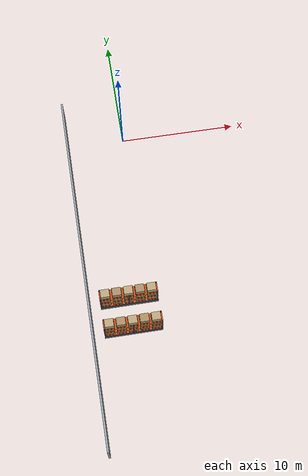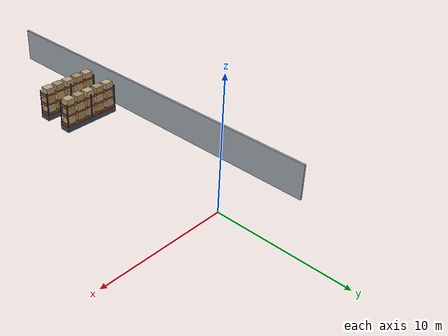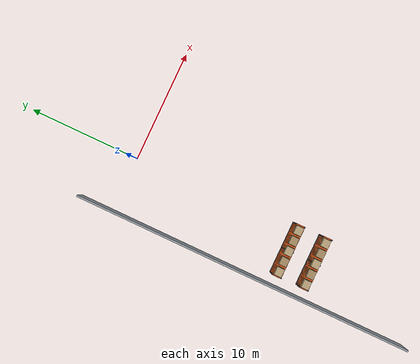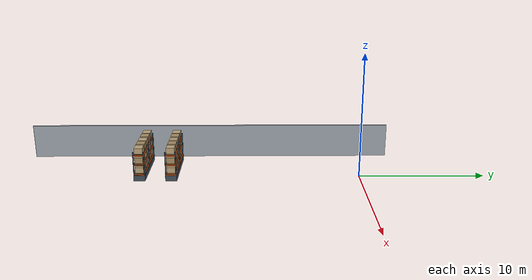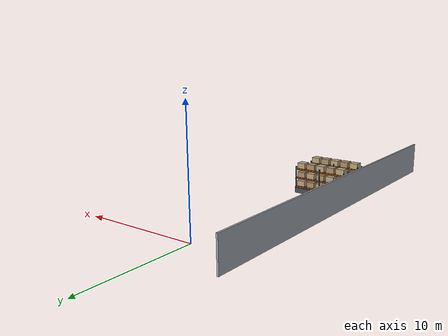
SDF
<sdf version="1.6">
 <world name="warehouse_logistics">
  <model name="warehouse_wall_west">
   <static>true</static>
   <pose>-4.925000000 -12.250000000 0.000000000 0.000000000 0.000000000 0.000000000</pose>
   <link name="structure">
    <collision name="mapped_solid_collision">
     <pose>0.000000000 0.000000000 1.400000000 0.000000000 0.000000000 0.000000000</pose>
     <geometry><box><size>0.150000000 30.500000000 2.800000000</size></box></geometry>
    </collision>
    <visual name="mapped_solid_visual">
     <pose>0.000000000 0.000000000 1.400000000 0.000000000 0.000000000 0.000000000</pose>
     <geometry><box><size>0.150000000 30.500000000 2.800000000</size></box></geometry>
     <material><ambient>.64 .67 .70 1</ambient><diffuse>.64 .67 .70 1</diffuse></material>
    </visual>
   </link>
  </model>
  <model name="warehouse_rack_06">
   <static>true</static>
   <pose>-1.600000000 -15.000000000 0.000000000 0.000000000 0.000000000 0.000000000</pose>
   <link name="structure">
    <collision name="mapped_solid_collision">
     <pose>0.000000000 0.000000000 0.225000000 0.000000000 0.000000000 0.000000000</pose>
     <geometry><box><size>4.800000000 0.900000000 0.450000000</size></box></geometry>
    </collision>
    <visual name="mapped_solid_visual">
     <pose>0.000000000 0.000000000 0.225000000 0.000000000 0.000000000 0.000000000</pose>
     <geometry><box><size>4.800000000 0.900000000 0.450000000</size></box></geometry>
     <material><ambient>.27 .31 .35 1</ambient><diffuse>.27 .31 .35 1</diffuse></material>
    </visual>
    <visual name="upright_0_0_visual">
     <pose>-2.340000000 -0.405000000 1.200000000 0.000000000 0.000000000 0.000000000</pose>
     <geometry><box><size>0.075000000 0.075000000 2.400000000</size></box></geometry>
     <material><ambient>.16 .28 .40 1</ambient><diffuse>.16 .28 .40 1</diffuse></material>
    </visual>
    <visual name="upright_0_1_visual">
     <pose>-2.340000000 0.405000000 1.200000000 0.000000000 0.000000000 0.000000000</pose>
     <geometry><box><size>0.075000000 0.075000000 2.400000000</size></box></geometry>
     <material><ambient>.16 .28 .40 1</ambient><diffuse>.16 .28 .40 1</diffuse></material>
    </visual>
    <visual name="upright_1_0_visual">
     <pose>0.000000000 -0.405000000 1.200000000 0.000000000 0.000000000 0.000000000</pose>
     <geometry><box><size>0.075000000 0.075000000 2.400000000</size></box></geometry>
     <material><ambient>.16 .28 .40 1</ambient><diffuse>.16 .28 .40 1</diffuse></material>
    </visual>
    <visual name="upright_1_1_visual">
     <pose>0.000000000 0.405000000 1.200000000 0.000000000 0.000000000 0.000000000</pose>
     <geometry><box><size>0.075000000 0.075000000 2.400000000</size></box></geometry>
     <material><ambient>.16 .28 .40 1</ambient><diffuse>.16 .28 .40 1</diffuse></material>
    </visual>
    <visual name="upright_2_0_visual">
     <pose>2.340000000 -0.405000000 1.200000000 0.000000000 0.000000000 0.000000000</pose>
     <geometry><box><size>0.075000000 0.075000000 2.400000000</size></box></geometry>
     <material><ambient>.16 .28 .40 1</ambient><diffuse>.16 .28 .40 1</diffuse></material>
    </visual>
    <visual name="upright_2_1_visual">
     <pose>2.340000000 0.405000000 1.200000000 0.000000000 0.000000000 0.000000000</pose>
     <geometry><box><size>0.075000000 0.075000000 2.400000000</size></box></geometry>
     <material><ambient>.16 .28 .40 1</ambient><diffuse>.16 .28 .40 1</diffuse></material>
    </visual>
    <visual name="shelf_0_visual">
     <pose>0.000000000 0.000000000 0.500000000 0.000000000 0.000000000 0.000000000</pose>
     <geometry><box><size>4.800000000 0.870000000 0.065000000</size></box></geometry>
     <material><ambient>.92 .36 .10 1</ambient><diffuse>.92 .36 .10 1</diffuse></material>
    </visual>
    <visual name="pallet_0_0_visual">
     <pose>-1.910000000 0.000000000 0.575000000 0.000000000 0.000000000 0.000000000</pose>
     <geometry><box><size>0.820000000 0.750000000 0.080000000</size></box></geometry>
     <material><ambient>.55 .39 .22 1</ambient><diffuse>.55 .39 .22 1</diffuse></material>
    </visual>
    <visual name="load_0_0_visual">
     <pose>-1.910000000 0.000000000 0.855000000 0.000000000 0.000000000 0.000000000</pose>
     <geometry><box><size>0.730000000 0.660000000 0.480000000</size></box></geometry>
     <material><ambient>.74 .65 .49 1</ambient><diffuse>.74 .65 .49 1</diffuse></material>
    </visual>
    <visual name="pallet_0_1_visual">
     <pose>-0.960000000 0.000000000 0.575000000 0.000000000 0.000000000 0.000000000</pose>
     <geometry><box><size>0.820000000 0.750000000 0.080000000</size></box></geometry>
     <material><ambient>.55 .39 .22 1</ambient><diffuse>.55 .39 .22 1</diffuse></material>
    </visual>
    <visual name="load_0_1_visual">
     <pose>-0.960000000 0.000000000 0.855000000 0.000000000 0.000000000 0.000000000</pose>
     <geometry><box><size>0.730000000 0.660000000 0.480000000</size></box></geometry>
     <material><ambient>.67 .56 .40 1</ambient><diffuse>.67 .56 .40 1</diffuse></material>
    </visual>
    <visual name="pallet_0_2_visual">
     <pose>-0.010000000 0.000000000 0.575000000 0.000000000 0.000000000 0.000000000</pose>
     <geometry><box><size>0.820000000 0.750000000 0.080000000</size></box></geometry>
     <material><ambient>.55 .39 .22 1</ambient><diffuse>.55 .39 .22 1</diffuse></material>
    </visual>
    <visual name="load_0_2_visual">
     <pose>-0.010000000 0.000000000 0.855000000 0.000000000 0.000000000 0.000000000</pose>
     <geometry><box><size>0.730000000 0.660000000 0.480000000</size></box></geometry>
     <material><ambient>.74 .65 .49 1</ambient><diffuse>.74 .65 .49 1</diffuse></material>
    </visual>
    <visual name="pallet_0_3_visual">
     <pose>0.940000000 0.000000000 0.575000000 0.000000000 0.000000000 0.000000000</pose>
     <geometry><box><size>0.820000000 0.750000000 0.080000000</size></box></geometry>
     <material><ambient>.55 .39 .22 1</ambient><diffuse>.55 .39 .22 1</diffuse></material>
    </visual>
    <visual name="load_0_3_visual">
     <pose>0.940000000 0.000000000 0.855000000 0.000000000 0.000000000 0.000000000</pose>
     <geometry><box><size>0.730000000 0.660000000 0.480000000</size></box></geometry>
     <material><ambient>.67 .56 .40 1</ambient><diffuse>.67 .56 .40 1</diffuse></material>
    </visual>
    <visual name="pallet_0_4_visual">
     <pose>1.890000000 0.000000000 0.575000000 0.000000000 0.000000000 0.000000000</pose>
     <geometry><box><size>0.820000000 0.750000000 0.080000000</size></box></geometry>
     <material><ambient>.55 .39 .22 1</ambient><diffuse>.55 .39 .22 1</diffuse></material>
    </visual>
    <visual name="load_0_4_visual">
     <pose>1.890000000 0.000000000 0.855000000 0.000000000 0.000000000 0.000000000</pose>
     <geometry><box><size>0.730000000 0.660000000 0.480000000</size></box></geometry>
     <material><ambient>.74 .65 .49 1</ambient><diffuse>.74 .65 .49 1</diffuse></material>
    </visual>
    <visual name="shelf_1_visual">
     <pose>0.000000000 0.000000000 1.300000000 0.000000000 0.000000000 0.000000000</pose>
     <geometry><box><size>4.800000000 0.870000000 0.065000000</size></box></geometry>
     <material><ambient>.92 .36 .10 1</ambient><diffuse>.92 .36 .10 1</diffuse></material>
    </visual>
    <visual name="pallet_1_0_visual">
     <pose>-1.910000000 0.000000000 1.375000000 0.000000000 0.000000000 0.000000000</pose>
     <geometry><box><size>0.820000000 0.750000000 0.080000000</size></box></geometry>
     <material><ambient>.55 .39 .22 1</ambient><diffuse>.55 .39 .22 1</diffuse></material>
    </visual>
    <visual name="load_1_0_visual">
     <pose>-1.910000000 0.000000000 1.655000000 0.000000000 0.000000000 0.000000000</pose>
     <geometry><box><size>0.730000000 0.660000000 0.480000000</size></box></geometry>
     <material><ambient>.67 .56 .40 1</ambient><diffuse>.67 .56 .40 1</diffuse></material>
    </visual>
    <visual name="pallet_1_1_visual">
     <pose>-0.960000000 0.000000000 1.375000000 0.000000000 0.000000000 0.000000000</pose>
     <geometry><box><size>0.820000000 0.750000000 0.080000000</size></box></geometry>
     <material><ambient>.55 .39 .22 1</ambient><diffuse>.55 .39 .22 1</diffuse></material>
    </visual>
    <visual name="load_1_1_visual">
     <pose>-0.960000000 0.000000000 1.655000000 0.000000000 0.000000000 0.000000000</pose>
     <geometry><box><size>0.730000000 0.660000000 0.480000000</size></box></geometry>
     <material><ambient>.74 .65 .49 1</ambient><diffuse>.74 .65 .49 1</diffuse></material>
    </visual>
    <visual name="pallet_1_2_visual">
     <pose>-0.010000000 0.000000000 1.375000000 0.000000000 0.000000000 0.000000000</pose>
     <geometry><box><size>0.820000000 0.750000000 0.080000000</size></box></geometry>
     <material><ambient>.55 .39 .22 1</ambient><diffuse>.55 .39 .22 1</diffuse></material>
    </visual>
    <visual name="load_1_2_visual">
     <pose>-0.010000000 0.000000000 1.655000000 0.000000000 0.000000000 0.000000000</pose>
     <geometry><box><size>0.730000000 0.660000000 0.480000000</size></box></geometry>
     <material><ambient>.67 .56 .40 1</ambient><diffuse>.67 .56 .40 1</diffuse></material>
    </visual>
    <visual name="pallet_1_3_visual">
     <pose>0.940000000 0.000000000 1.375000000 0.000000000 0.000000000 0.000000000</pose>
     <geometry><box><size>0.820000000 0.750000000 0.080000000</size></box></geometry>
     <material><ambient>.55 .39 .22 1</ambient><diffuse>.55 .39 .22 1</diffuse></material>
    </visual>
    <visual name="load_1_3_visual">
     <pose>0.940000000 0.000000000 1.655000000 0.000000000 0.000000000 0.000000000</pose>
     <geometry><box><size>0.730000000 0.660000000 0.480000000</size></box></geometry>
     <material><ambient>.74 .65 .49 1</ambient><diffuse>.74 .65 .49 1</diffuse></material>
    </visual>
    <visual name="pallet_1_4_visual">
     <pose>1.890000000 0.000000000 1.375000000 0.000000000 0.000000000 0.000000000</pose>
     <geometry><box><size>0.820000000 0.750000000 0.080000000</size></box></geometry>
     <material><ambient>.55 .39 .22 1</ambient><diffuse>.55 .39 .22 1</diffuse></material>
    </visual>
    <visual name="load_1_4_visual">
     <pose>1.890000000 0.000000000 1.655000000 0.000000000 0.000000000 0.000000000</pose>
     <geometry><box><size>0.730000000 0.660000000 0.480000000</size></box></geometry>
     <material><ambient>.67 .56 .40 1</ambient><diffuse>.67 .56 .40 1</diffuse></material>
    </visual>
    <visual name="shelf_2_visual">
     <pose>0.000000000 0.000000000 2.100000000 0.000000000 0.000000000 0.000000000</pose>
     <geometry><box><size>4.800000000 0.870000000 0.065000000</size></box></geometry>
     <material><ambient>.92 .36 .10 1</ambient><diffuse>.92 .36 .10 1</diffuse></material>
    </visual>
    <visual name="pallet_2_0_visual">
     <pose>-1.910000000 0.000000000 2.175000000 0.000000000 0.000000000 0.000000000</pose>
     <geometry><box><size>0.820000000 0.750000000 0.080000000</size></box></geometry>
     <material><ambient>.55 .39 .22 1</ambient><diffuse>.55 .39 .22 1</diffuse></material>
    </visual>
    <visual name="load_2_0_visual">
     <pose>-1.910000000 0.000000000 2.455000000 0.000000000 0.000000000 0.000000000</pose>
     <geometry><box><size>0.730000000 0.660000000 0.480000000</size></box></geometry>
     <material><ambient>.74 .65 .49 1</ambient><diffuse>.74 .65 .49 1</diffuse></material>
    </visual>
    <visual name="pallet_2_1_visual">
     <pose>-0.960000000 0.000000000 2.175000000 0.000000000 0.000000000 0.000000000</pose>
     <geometry><box><size>0.820000000 0.750000000 0.080000000</size></box></geometry>
     <material><ambient>.55 .39 .22 1</ambient><diffuse>.55 .39 .22 1</diffuse></material>
    </visual>
    <visual name="load_2_1_visual">
     <pose>-0.960000000 0.000000000 2.455000000 0.000000000 0.000000000 0.000000000</pose>
     <geometry><box><size>0.730000000 0.660000000 0.480000000</size></box></geometry>
     <material><ambient>.67 .56 .40 1</ambient><diffuse>.67 .56 .40 1</diffuse></material>
    </visual>
    <visual name="pallet_2_2_visual">
     <pose>-0.010000000 0.000000000 2.175000000 0.000000000 0.000000000 0.000000000</pose>
     <geometry><box><size>0.820000000 0.750000000 0.080000000</size></box></geometry>
     <material><ambient>.55 .39 .22 1</ambient><diffuse>.55 .39 .22 1</diffuse></material>
    </visual>
    <visual name="load_2_2_visual">
     <pose>-0.010000000 0.000000000 2.455000000 0.000000000 0.000000000 0.000000000</pose>
     <geometry><box><size>0.730000000 0.660000000 0.480000000</size></box></geometry>
     <material><ambient>.74 .65 .49 1</ambient><diffuse>.74 .65 .49 1</diffuse></material>
    </visual>
    <visual name="pallet_2_3_visual">
     <pose>0.940000000 0.000000000 2.175000000 0.000000000 0.000000000 0.000000000</pose>
     <geometry><box><size>0.820000000 0.750000000 0.080000000</size></box></geometry>
     <material><ambient>.55 .39 .22 1</ambient><diffuse>.55 .39 .22 1</diffuse></material>
    </visual>
    <visual name="load_2_3_visual">
     <pose>0.940000000 0.000000000 2.455000000 0.000000000 0.000000000 0.000000000</pose>
     <geometry><box><size>0.730000000 0.660000000 0.480000000</size></box></geometry>
     <material><ambient>.67 .56 .40 1</ambient><diffuse>.67 .56 .40 1</diffuse></material>
    </visual>
    <visual name="pallet_2_4_visual">
     <pose>1.890000000 0.000000000 2.175000000 0.000000000 0.000000000 0.000000000</pose>
     <geometry><box><size>0.820000000 0.750000000 0.080000000</size></box></geometry>
     <material><ambient>.55 .39 .22 1</ambient><diffuse>.55 .39 .22 1</diffuse></material>
    </visual>
    <visual name="load_2_4_visual">
     <pose>1.890000000 0.000000000 2.455000000 0.000000000 0.000000000 0.000000000</pose>
     <geometry><box><size>0.730000000 0.660000000 0.480000000</size></box></geometry>
     <material><ambient>.74 .65 .49 1</ambient><diffuse>.74 .65 .49 1</diffuse></material>
    </visual>
   </link>
  </model>
  <model name="warehouse_rack_07">
   <static>true</static>
   <pose>-1.600000000 -17.500000000 0.000000000 0.000000000 0.000000000 0.000000000</pose>
   <link name="structure">
    <collision name="mapped_solid_collision">
     <pose>0.000000000 0.000000000 0.225000000 0.000000000 0.000000000 0.000000000</pose>
     <geometry><box><size>4.800000000 0.900000000 0.450000000</size></box></geometry>
    </collision>
    <visual name="mapped_solid_visual">
     <pose>0.000000000 0.000000000 0.225000000 0.000000000 0.000000000 0.000000000</pose>
     <geometry><box><size>4.800000000 0.900000000 0.450000000</size></box></geometry>
     <material><ambient>.27 .31 .35 1</ambient><diffuse>.27 .31 .35 1</diffuse></material>
    </visual>
    <visual name="upright_0_0_visual">
     <pose>-2.340000000 -0.405000000 1.200000000 0.000000000 0.000000000 0.000000000</pose>
     <geometry><box><size>0.075000000 0.075000000 2.400000000</size></box></geometry>
     <material><ambient>.16 .28 .40 1</ambient><diffuse>.16 .28 .40 1</diffuse></material>
    </visual>
    <visual name="upright_0_1_visual">
     <pose>-2.340000000 0.405000000 1.200000000 0.000000000 0.000000000 0.000000000</pose>
     <geometry><box><size>0.075000000 0.075000000 2.400000000</size></box></geometry>
     <material><ambient>.16 .28 .40 1</ambient><diffuse>.16 .28 .40 1</diffuse></material>
    </visual>
    <visual name="upright_1_0_visual">
     <pose>0.000000000 -0.405000000 1.200000000 0.000000000 0.000000000 0.000000000</pose>
     <geometry><box><size>0.075000000 0.075000000 2.400000000</size></box></geometry>
     <material><ambient>.16 .28 .40 1</ambient><diffuse>.16 .28 .40 1</diffuse></material>
    </visual>
    <visual name="upright_1_1_visual">
     <pose>0.000000000 0.405000000 1.200000000 0.000000000 0.000000000 0.000000000</pose>
     <geometry><box><size>0.075000000 0.075000000 2.400000000</size></box></geometry>
     <material><ambient>.16 .28 .40 1</ambient><diffuse>.16 .28 .40 1</diffuse></material>
    </visual>
    <visual name="upright_2_0_visual">
     <pose>2.340000000 -0.405000000 1.200000000 0.000000000 0.000000000 0.000000000</pose>
     <geometry><box><size>0.075000000 0.075000000 2.400000000</size></box></geometry>
     <material><ambient>.16 .28 .40 1</ambient><diffuse>.16 .28 .40 1</diffuse></material>
    </visual>
    <visual name="upright_2_1_visual">
     <pose>2.340000000 0.405000000 1.200000000 0.000000000 0.000000000 0.000000000</pose>
     <geometry><box><size>0.075000000 0.075000000 2.400000000</size></box></geometry>
     <material><ambient>.16 .28 .40 1</ambient><diffuse>.16 .28 .40 1</diffuse></material>
    </visual>
    <visual name="shelf_0_visual">
     <pose>0.000000000 0.000000000 0.500000000 0.000000000 0.000000000 0.000000000</pose>
     <geometry><box><size>4.800000000 0.870000000 0.065000000</size></box></geometry>
     <material><ambient>.92 .36 .10 1</ambient><diffuse>.92 .36 .10 1</diffuse></material>
    </visual>
    <visual name="pallet_0_0_visual">
     <pose>-1.910000000 0.000000000 0.575000000 0.000000000 0.000000000 0.000000000</pose>
     <geometry><box><size>0.820000000 0.750000000 0.080000000</size></box></geometry>
     <material><ambient>.55 .39 .22 1</ambient><diffuse>.55 .39 .22 1</diffuse></material>
    </visual>
    <visual name="load_0_0_visual">
     <pose>-1.910000000 0.000000000 0.855000000 0.000000000 0.000000000 0.000000000</pose>
     <geometry><box><size>0.730000000 0.660000000 0.480000000</size></box></geometry>
     <material><ambient>.74 .65 .49 1</ambient><diffuse>.74 .65 .49 1</diffuse></material>
    </visual>
    <visual name="pallet_0_1_visual">
     <pose>-0.960000000 0.000000000 0.575000000 0.000000000 0.000000000 0.000000000</pose>
     <geometry><box><size>0.820000000 0.750000000 0.080000000</size></box></geometry>
     <material><ambient>.55 .39 .22 1</ambient><diffuse>.55 .39 .22 1</diffuse></material>
    </visual>
    <visual name="load_0_1_visual">
     <pose>-0.960000000 0.000000000 0.855000000 0.000000000 0.000000000 0.000000000</pose>
     <geometry><box><size>0.730000000 0.660000000 0.480000000</size></box></geometry>
     <material><ambient>.67 .56 .40 1</ambient><diffuse>.67 .56 .40 1</diffuse></material>
    </visual>
    <visual name="pallet_0_2_visual">
     <pose>-0.010000000 0.000000000 0.575000000 0.000000000 0.000000000 0.000000000</pose>
     <geometry><box><size>0.820000000 0.750000000 0.080000000</size></box></geometry>
     <material><ambient>.55 .39 .22 1</ambient><diffuse>.55 .39 .22 1</diffuse></material>
    </visual>
    <visual name="load_0_2_visual">
     <pose>-0.010000000 0.000000000 0.855000000 0.000000000 0.000000000 0.000000000</pose>
     <geometry><box><size>0.730000000 0.660000000 0.480000000</size></box></geometry>
     <material><ambient>.74 .65 .49 1</ambient><diffuse>.74 .65 .49 1</diffuse></material>
    </visual>
    <visual name="pallet_0_3_visual">
     <pose>0.940000000 0.000000000 0.575000000 0.000000000 0.000000000 0.000000000</pose>
     <geometry><box><size>0.820000000 0.750000000 0.080000000</size></box></geometry>
     <material><ambient>.55 .39 .22 1</ambient><diffuse>.55 .39 .22 1</diffuse></material>
    </visual>
    <visual name="load_0_3_visual">
     <pose>0.940000000 0.000000000 0.855000000 0.000000000 0.000000000 0.000000000</pose>
     <geometry><box><size>0.730000000 0.660000000 0.480000000</size></box></geometry>
     <material><ambient>.67 .56 .40 1</ambient><diffuse>.67 .56 .40 1</diffuse></material>
    </visual>
    <visual name="pallet_0_4_visual">
     <pose>1.890000000 0.000000000 0.575000000 0.000000000 0.000000000 0.000000000</pose>
     <geometry><box><size>0.820000000 0.750000000 0.080000000</size></box></geometry>
     <material><ambient>.55 .39 .22 1</ambient><diffuse>.55 .39 .22 1</diffuse></material>
    </visual>
    <visual name="load_0_4_visual">
     <pose>1.890000000 0.000000000 0.855000000 0.000000000 0.000000000 0.000000000</pose>
     <geometry><box><size>0.730000000 0.660000000 0.480000000</size></box></geometry>
     <material><ambient>.74 .65 .49 1</ambient><diffuse>.74 .65 .49 1</diffuse></material>
    </visual>
    <visual name="shelf_1_visual">
     <pose>0.000000000 0.000000000 1.300000000 0.000000000 0.000000000 0.000000000</pose>
     <geometry><box><size>4.800000000 0.870000000 0.065000000</size></box></geometry>
     <material><ambient>.92 .36 .10 1</ambient><diffuse>.92 .36 .10 1</diffuse></material>
    </visual>
    <visual name="pallet_1_0_visual">
     <pose>-1.910000000 0.000000000 1.375000000 0.000000000 0.000000000 0.000000000</pose>
     <geometry><box><size>0.820000000 0.750000000 0.080000000</size></box></geometry>
     <material><ambient>.55 .39 .22 1</ambient><diffuse>.55 .39 .22 1</diffuse></material>
    </visual>
    <visual name="load_1_0_visual">
     <pose>-1.910000000 0.000000000 1.655000000 0.000000000 0.000000000 0.000000000</pose>
     <geometry><box><size>0.730000000 0.660000000 0.480000000</size></box></geometry>
     <material><ambient>.67 .56 .40 1</ambient><diffuse>.67 .56 .40 1</diffuse></material>
    </visual>
    <visual name="pallet_1_1_visual">
     <pose>-0.960000000 0.000000000 1.375000000 0.000000000 0.000000000 0.000000000</pose>
     <geometry><box><size>0.820000000 0.750000000 0.080000000</size></box></geometry>
     <material><ambient>.55 .39 .22 1</ambient><diffuse>.55 .39 .22 1</diffuse></material>
    </visual>
    <visual name="load_1_1_visual">
     <pose>-0.960000000 0.000000000 1.655000000 0.000000000 0.000000000 0.000000000</pose>
     <geometry><box><size>0.730000000 0.660000000 0.480000000</size></box></geometry>
     <material><ambient>.74 .65 .49 1</ambient><diffuse>.74 .65 .49 1</diffuse></material>
    </visual>
    <visual name="pallet_1_2_visual">
     <pose>-0.010000000 0.000000000 1.375000000 0.000000000 0.000000000 0.000000000</pose>
     <geometry><box><size>0.820000000 0.750000000 0.080000000</size></box></geometry>
     <material><ambient>.55 .39 .22 1</ambient><diffuse>.55 .39 .22 1</diffuse></material>
    </visual>
    <visual name="load_1_2_visual">
     <pose>-0.010000000 0.000000000 1.655000000 0.000000000 0.000000000 0.000000000</pose>
     <geometry><box><size>0.730000000 0.660000000 0.480000000</size></box></geometry>
     <material><ambient>.67 .56 .40 1</ambient><diffuse>.67 .56 .40 1</diffuse></material>
    </visual>
    <visual name="pallet_1_3_visual">
     <pose>0.940000000 0.000000000 1.375000000 0.000000000 0.000000000 0.000000000</pose>
     <geometry><box><size>0.820000000 0.750000000 0.080000000</size></box></geometry>
     <material><ambient>.55 .39 .22 1</ambient><diffuse>.55 .39 .22 1</diffuse></material>
    </visual>
    <visual name="load_1_3_visual">
     <pose>0.940000000 0.000000000 1.655000000 0.000000000 0.000000000 0.000000000</pose>
     <geometry><box><size>0.730000000 0.660000000 0.480000000</size></box></geometry>
     <material><ambient>.74 .65 .49 1</ambient><diffuse>.74 .65 .49 1</diffuse></material>
    </visual>
    <visual name="pallet_1_4_visual">
     <pose>1.890000000 0.000000000 1.375000000 0.000000000 0.000000000 0.000000000</pose>
     <geometry><box><size>0.820000000 0.750000000 0.080000000</size></box></geometry>
     <material><ambient>.55 .39 .22 1</ambient><diffuse>.55 .39 .22 1</diffuse></material>
    </visual>
    <visual name="load_1_4_visual">
     <pose>1.890000000 0.000000000 1.655000000 0.000000000 0.000000000 0.000000000</pose>
     <geometry><box><size>0.730000000 0.660000000 0.480000000</size></box></geometry>
     <material><ambient>.67 .56 .40 1</ambient><diffuse>.67 .56 .40 1</diffuse></material>
    </visual>
    <visual name="shelf_2_visual">
     <pose>0.000000000 0.000000000 2.100000000 0.000000000 0.000000000 0.000000000</pose>
     <geometry><box><size>4.800000000 0.870000000 0.065000000</size></box></geometry>
     <material><ambient>.92 .36 .10 1</ambient><diffuse>.92 .36 .10 1</diffuse></material>
    </visual>
    <visual name="pallet_2_0_visual">
     <pose>-1.910000000 0.000000000 2.175000000 0.000000000 0.000000000 0.000000000</pose>
     <geometry><box><size>0.820000000 0.750000000 0.080000000</size></box></geometry>
     <material><ambient>.55 .39 .22 1</ambient><diffuse>.55 .39 .22 1</diffuse></material>
    </visual>
    <visual name="load_2_0_visual">
     <pose>-1.910000000 0.000000000 2.455000000 0.000000000 0.000000000 0.000000000</pose>
     <geometry><box><size>0.730000000 0.660000000 0.480000000</size></box></geometry>
     <material><ambient>.74 .65 .49 1</ambient><diffuse>.74 .65 .49 1</diffuse></material>
    </visual>
    <visual name="pallet_2_1_visual">
     <pose>-0.960000000 0.000000000 2.175000000 0.000000000 0.000000000 0.000000000</pose>
     <geometry><box><size>0.820000000 0.750000000 0.080000000</size></box></geometry>
     <material><ambient>.55 .39 .22 1</ambient><diffuse>.55 .39 .22 1</diffuse></material>
    </visual>
    <visual name="load_2_1_visual">
     <pose>-0.960000000 0.000000000 2.455000000 0.000000000 0.000000000 0.000000000</pose>
     <geometry><box><size>0.730000000 0.660000000 0.480000000</size></box></geometry>
     <material><ambient>.67 .56 .40 1</ambient><diffuse>.67 .56 .40 1</diffuse></material>
    </visual>
    <visual name="pallet_2_2_visual">
     <pose>-0.010000000 0.000000000 2.175000000 0.000000000 0.000000000 0.000000000</pose>
     <geometry><box><size>0.820000000 0.750000000 0.080000000</size></box></geometry>
     <material><ambient>.55 .39 .22 1</ambient><diffuse>.55 .39 .22 1</diffuse></material>
    </visual>
    <visual name="load_2_2_visual">
     <pose>-0.010000000 0.000000000 2.455000000 0.000000000 0.000000000 0.000000000</pose>
     <geometry><box><size>0.730000000 0.660000000 0.480000000</size></box></geometry>
     <material><ambient>.74 .65 .49 1</ambient><diffuse>.74 .65 .49 1</diffuse></material>
    </visual>
    <visual name="pallet_2_3_visual">
     <pose>0.940000000 0.000000000 2.175000000 0.000000000 0.000000000 0.000000000</pose>
     <geometry><box><size>0.820000000 0.750000000 0.080000000</size></box></geometry>
     <material><ambient>.55 .39 .22 1</ambient><diffuse>.55 .39 .22 1</diffuse></material>
    </visual>
    <visual name="load_2_3_visual">
     <pose>0.940000000 0.000000000 2.455000000 0.000000000 0.000000000 0.000000000</pose>
     <geometry><box><size>0.730000000 0.660000000 0.480000000</size></box></geometry>
     <material><ambient>.67 .56 .40 1</ambient><diffuse>.67 .56 .40 1</diffuse></material>
    </visual>
    <visual name="pallet_2_4_visual">
     <pose>1.890000000 0.000000000 2.175000000 0.000000000 0.000000000 0.000000000</pose>
     <geometry><box><size>0.820000000 0.750000000 0.080000000</size></box></geometry>
     <material><ambient>.55 .39 .22 1</ambient><diffuse>.55 .39 .22 1</diffuse></material>
    </visual>
    <visual name="load_2_4_visual">
     <pose>1.890000000 0.000000000 2.455000000 0.000000000 0.000000000 0.000000000</pose>
     <geometry><box><size>0.730000000 0.660000000 0.480000000</size></box></geometry>
     <material><ambient>.74 .65 .49 1</ambient><diffuse>.74 .65 .49 1</diffuse></material>
    </visual>
   </link>
  </model>
 </world>
</sdf>
